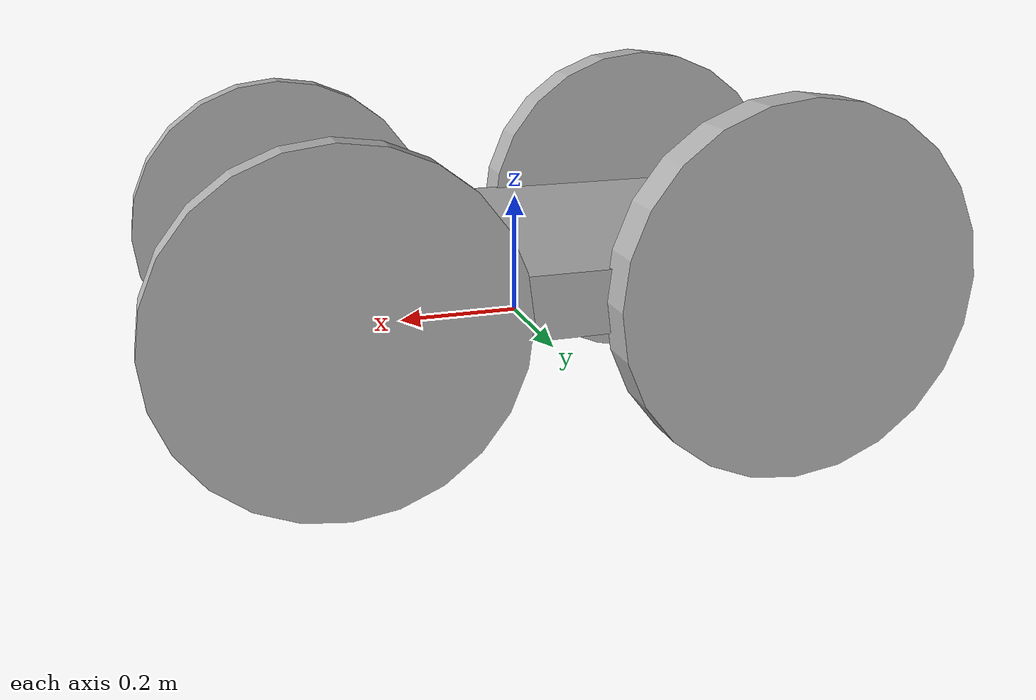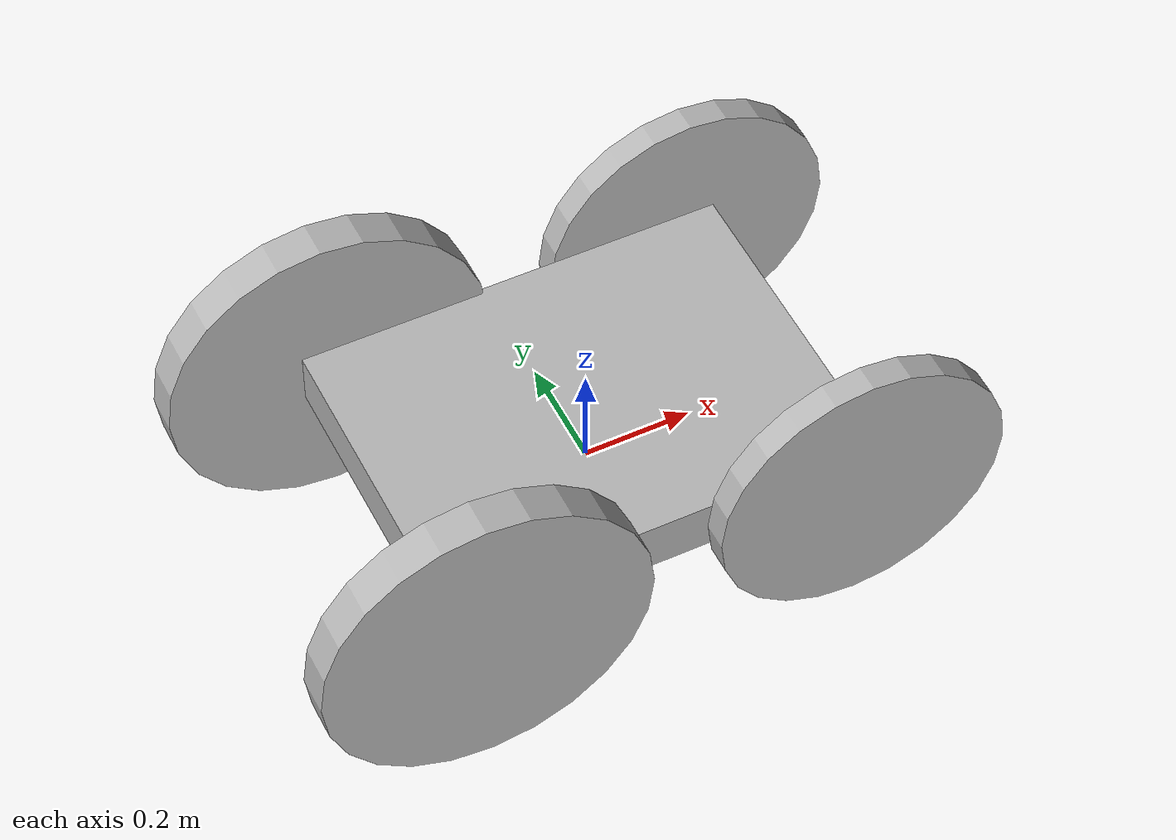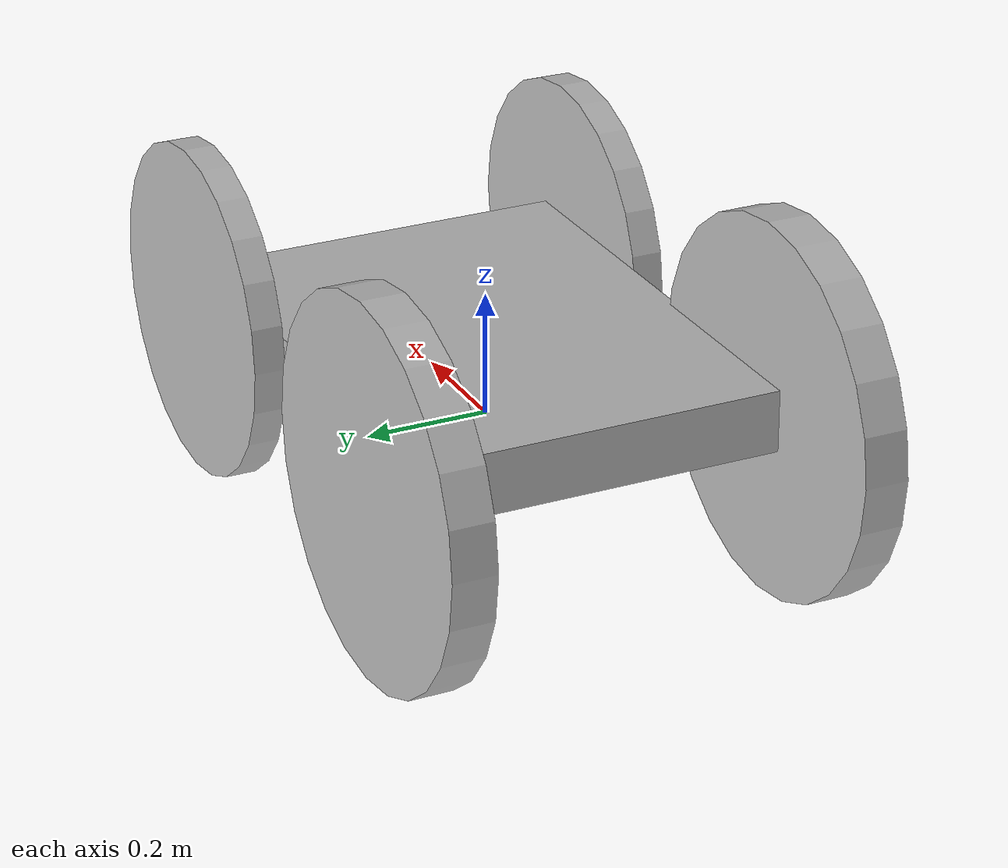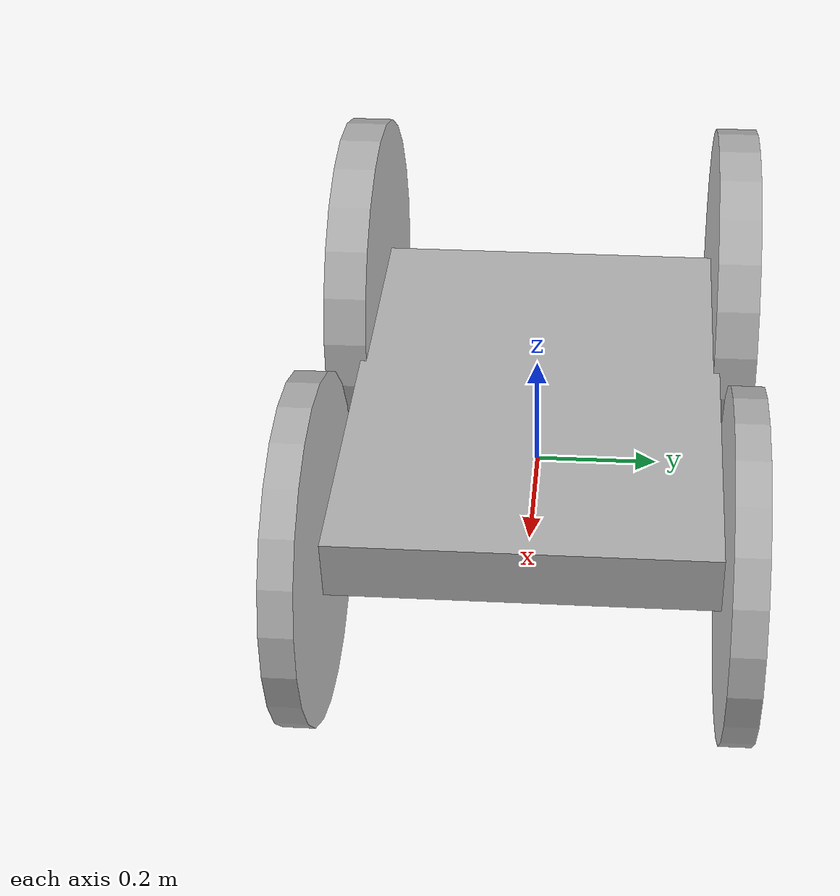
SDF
<?xml version='1.0'?>
<sdf version='1.4'>
  <model name="my_robot">
  <static>false</static>
<link name='chassis'>
            <pose>0 0 .1 0 0 0</pose>

            <collision name='collision'>
              <geometry>
                <box>
                  <size>.8 .6 .1</size>
                </box>
              </geometry>
            </collision>

            <visual name='visual'>
              <geometry>
                <box>
                  <size>.8 .6 .1</size>
                </box>
              </geometry>
            </visual>

        </link>
          <link name="rear_left_wheel">
        <pose>-0.35 0.325 0.1 0 1.5707 1.5707</pose>
        <collision name="collision">
          <geometry>
            <cylinder>
              <radius>.3</radius>
              <length>.07</length>
            </cylinder>
          </geometry>

          <surface>
              <friction>
                <ode>
                  <mu>1.5</mu>
                  <mu2>1.5</mu2>
                </ode>
              </friction>
          </surface>

        </collision>
        <visual name="visual">
          <geometry>
            <cylinder>
              <radius>.3</radius>
              <length>.07</length>
            </cylinder>
          </geometry>
        </visual>
      </link>

          <link name="rear_right_wheel">
        <pose> -0.35 -0.325 0.1 0 1.5707 1.5707</pose>
        <collision name="collision">
          <geometry>
            <cylinder>
              <radius>.3</radius>
              <length>.07</length>
            </cylinder>

          <surface>
              <friction>
                <ode>
                  <mu>1.5</mu>
                  <mu2>1.5</mu2>
                </ode>
              </friction>
          </surface>

          </geometry>
        </collision>
        <visual name="visual">
          <geometry>
            <cylinder>
              <radius>.3</radius>
              <length>.07</length>
            </cylinder>
          </geometry>
        </visual>
      </link>

          <link name="front_left_wheel">
        <pose>0.35 0.325 0.1 0 1.5707 1.5707</pose>
        <collision name="collision">
          <geometry>
            <cylinder>
              <radius>.27</radius>
              <length>.05</length>
            </cylinder>

          <surface>
              <friction>
                <ode>
                  <mu>1.5</mu>
                  <mu2>1.5</mu2>
                </ode>
              </friction>
          </surface>

          </geometry>
        </collision>
        <visual name="visual">
          <geometry>
            <cylinder>
              <radius>.27</radius>
              <length>.05</length>
            </cylinder>
          </geometry>
        </visual>
      </link>
      <link name="front_right_wheel">
        <pose>0.35 -0.325 0.1 0 1.5707 1.5707</pose>
        <collision name="collision">
          <geometry>
            <cylinder>
              <radius>.27</radius>
              <length>.05</length>
            </cylinder>
          </geometry>

          <surface>
              <friction>
                <ode>
                  <mu>1.5</mu>
                  <mu2>1.5</mu2>
                </ode>
              </friction>
          </surface>

        </collision>
        <visual name="visual">
          <geometry>
            <cylinder>
              <radius>.27</radius>
              <length>.05</length>
            </cylinder>
          </geometry>
        </visual>
    </link>

      <joint type="revolute" name="front_left_wheel_hinge">
        <pose>0 0 -0.03 0 0 0</pose>
        <child>front_left_wheel</child>
        <parent>chassis</parent>
        <axis>
          <xyz>0 1 0</xyz>
        </axis>
      </joint>

      <joint type="revolute" name="front_right_wheel_hinge">
        <pose> 0 0 0.03 0 0 0</pose>
        <child>front_right_wheel</child>
        <parent>chassis</parent>
        <axis>
          <xyz>0 1 0</xyz>
        </axis>
      </joint>

       <joint type="revolute" name="rear_left_wheel_hinge">
        <pose> 0 0 -0.03 0 0 0</pose>
        <child>rear_left_wheel</child>
        <parent>chassis</parent>
        <axis>
          <xyz>0 1 0</xyz>
        </axis>
      </joint> -->

      <joint type="revolute" name="rear_right_wheel_hinge">
        <pose> 0 0 0.03 0 0 0</pose>
        <child>rear_right_wheel</child>
        <parent>chassis</parent>
        <axis>
          <xyz>0 2 0</xyz>
        </axis>
      </joint>

  </model>
</sdf>
